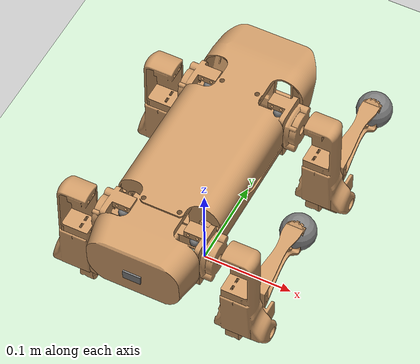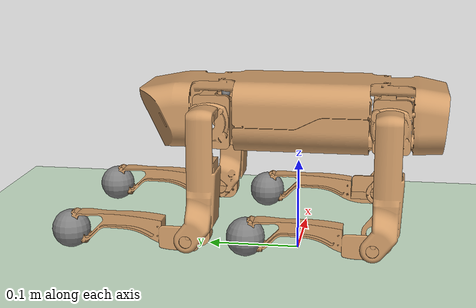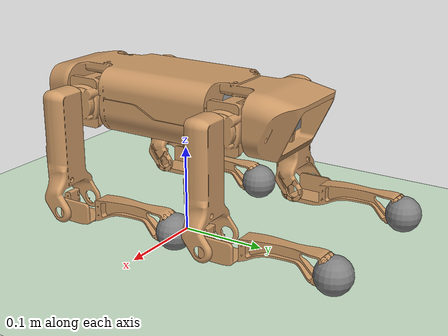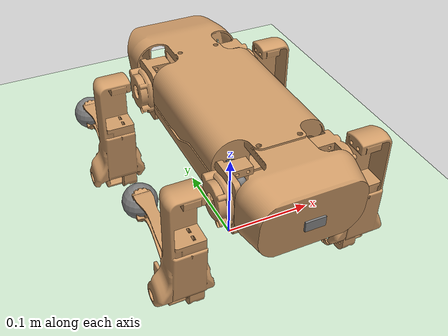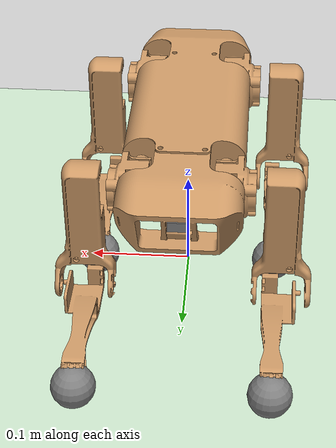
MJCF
<mujoco model="qrpfra">
    <include file="qrpfra_v3_IMU.xml"/>

    <default>
        <joint armature="1" damping="1" limited="true"/>
        <geom conaffinity="0" condim="3" density="1.0" friction="1 0.5 0.5" margin="0.01" rgba="0.8 0.6 0.4 1"/>
    </default>

    <asset>
        <texture builtin="gradient" height="100" rgb1="1 1 1" rgb2="0 0 0" type="skybox" width="100"/>
        <texture builtin="flat" height="1278" mark="cross" markrgb="1 1 1" name="texgeom" random="0.01" rgb1="0 0 0.4" rgb2="0.8 0.6 0.4" type="cube" width="127"/>
        <texture builtin="checker"  name="texplane" rgb1="0.02 0.02 0.12" rgb2="0.98 0.98 0.88" type="2d" width="100" height="100"/>
        <material name="MatPlane" reflectance="0.8" shininess="1" specular="1" texrepeat="60 60" texture="texplane"/>
    </asset>

    <worldbody>
        <light cutoff="100" diffuse="1 1 1" dir="-0 0 -1.3" directional="true" exponent="1" pos="0 0 1.3" specular=".1 .1 .1"/>
        <!--geom conaffinity="1" condim="3" friction="1 0.6 0.6" material="MatPlane" name="floor" pos="0 0 -0.05" rgba="0.8 0.9 0.8 1" size="50 50 0.05" type="box"/-->
        <geom conaffinity="1" condim="3" material="MatPlane" name="floor" pos="0 0 0" rgba="0.8 0.9 0.8 1" size="40 40 40" type="plane"/>
        <!--geom name="floor" size="0 0 0.05" type="plane" material="plane"/-->
    </worldbody>
</mujoco>

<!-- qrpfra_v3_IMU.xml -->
<mujoco model="qrpfra">
    <compiler angle="degree" coordinate="local" inertiafromgeom="true" convexhull="true"/>
    <option integrator="RK4" timestep="0.02" gravity="0 0 -9.81" density="1.24"/>

    <default>
        <joint armature="1" damping="1" limited="true"/>
        <geom conaffinity="1" condim="3" density="1.24" friction="1 0.5 0.5" margin="0.01" rgba="0.8 0.6 0.4 1"/>

        <default class="servo_motors">
            <position ctrllimited="true" ctrlrange="-1 1" kp="90" gear="0.95"/>
        </default>

        <default class="joint_def">
            <joint pos="0 0 0" range="-60 60" type="hinge" damping="12"/>
        </default>

        <default class="Left_foot_Site">
            <site pos="-0.016 0.13 -0.005" type="sphere" size="0.02"/>
        </default>

        <default class="Right_foot_Site">
            <site pos="0.016 0.13 -0.005" type="sphere" size="0.02"/>
        </default>

    </default>

    <asset>
        <mesh name="main_body" file="/Users/deniz/PycharmProjects/QRPfRA_Senior_Project/QRPfRA/QRPfRA_body_m.stl"/>
        <mesh name="Left_Hind_Limb" file="/Users/deniz/PycharmProjects/QRPfRA_Senior_Project/QRPfRA/QRPfRA_left_hindlimb_m.stl"/>
        <mesh name="Left_MidLimb" file="/Users/deniz/PycharmProjects/QRPfRA_Senior_Project/QRPfRA/QRPfRA_left_midlimb_m.stl"/>
        <mesh name="Left_Wrist" file="/Users/deniz/PycharmProjects/QRPfRA_Senior_Project/QRPfRA/QRPfRA_left_wrist_m.stl"/>
        <mesh name="Right_Hind_Limb" file="/Users/deniz/PycharmProjects/QRPfRA_Senior_Project/QRPfRA/QRPfRA_right_hindlimb_m.stl"/>
        <mesh name="Right_MidLimb" file="/Users/deniz/PycharmProjects/QRPfRA_Senior_Project/QRPfRA/QRPfRA_right_midlimb_m.stl"/>
        <mesh name="Right_Wrist" file="/Users/deniz/PycharmProjects/QRPfRA_Senior_Project/QRPfRA/QRPfRA_right_wrist_m.stl"/>
        <!--mesh name="map" file="/Users/deniz/Desktop/test_metric_depth/deneme2.stl"/-->
    </asset>

    <worldbody>
        <camera name="track" mode="trackcom" pos="0 -1 0.3" xyaxes="1 0 0 0 0 1"/>
        <!--geom type="mesh" mesh="map" size="0.1"/-->

        <body name="base_link" pos="0 0 0.15">
            <geom type="mesh" mesh="main_body" mass="2" friction="0.3" contype="1" conaffinity="1" density="2400" />
            <joint limited="false" margin="0.01" name="root" pos="0 0 0" type="free" stiffness="0" damping="0" frictionloss="0" armature="0"/>

            <site name="base_link_Site" pos="0 0 0" type="box" size="0.03 0.05 0.01"/>

            <site name="head_rangefinder" pos="0 0.14 0" type="box" size="0.01 0.005 0.001" euler="-90 0 0"/>
            <site name="rear_rangefinder" pos="0 -0.155 0" type="box" size="0.01 0.005 0.001" euler="90 0 0"/>

            <site name="FL_Leg_ref" pos="-0.04 0.0875 0.015"/>
            <site name="RL_Leg_ref" pos="-0.04 -0.0975 0.015"/>
            <site name="FR_Leg_ref" pos="0.04 0.0875 0.015"/>
            <site name="RR_Leg_ref" pos="0.04 -0.0975 0.015"/>I am trying to make a

            <body name="front_Left_Hind_Limb" pos="-0.04 0.065 0.013">
                <joint class="joint_def" axis="0 1 0" name="FL_hind_to_base" />
                <geom type="mesh" mesh="Left_Hind_Limb" mass="0.150" contype="1" conaffinity="1" density="2400"/>

                <body name="front_Left_MidLimb" pos="-0.025 0.023 -0.0105" euler="90 0 0">
                    <joint class="joint_def" axis="1 0 0" name="FL_mid_to_base"/>
                    <geom type="mesh" mesh="Left_MidLimb" mass="0.350" contype="1" conaffinity="1" density="2400"/>

                    <body name="front_Left_Wrist" pos="-0.005 -0.107 -0.013" euler="-90 0 0">
                        <joint class="joint_def" axis="1 0 0" name="FL_wrist_to_mid" />
                        <geom type="mesh" mesh="Left_Wrist" mass="0.350" contype="1" conaffinity="1" density="2400"/>

                        <site name="front_Left_Wrist_Site" class="Left_foot_Site"/>

                    </body>
                </body>
            </body>

            <body name="rear_Left_Hind_Limb" pos="-0.04 -0.12 0.013">
                <joint class="joint_def" axis="0 1 0" name="RL_hind_to_base" />
                <geom type="mesh" mesh="Left_Hind_Limb" mass="0.150" contype="1" conaffinity="1" density="2400"/>

                <body name="rear_Left_MidLimb" pos="-0.025 0.023 -0.0105" euler="90 0 0">
                    <joint class="joint_def" axis="1 0 0" name="RL_mid_to_base" />
                    <geom type="mesh" mesh="Left_MidLimb" mass="0.350" contype="1" conaffinity="1" density="2400"/>

                    <body name="rear_Left_Wrist" pos="-0.005 -0.107 -0.013" euler="-90 0 0">
                        <joint class="joint_def" axis="1 0 0" name="RL_wrist_to_mid" />
                        <geom type="mesh" mesh="Left_Wrist" mass="0.350" contype="1" conaffinity="1" density="2400"/>

                        <site name="rear_Left_Wrist_Site" class="Left_foot_Site"/>

                    </body>
                </body>
            </body>

            <body name="front_Right_Hind_Limb" pos="0.04 0.065 0.013">
                <joint class="joint_def" axis="0 1 0" name="FR_hind_to_base" />
                <geom type="mesh" mesh="Right_Hind_Limb" mass="0.150" contype="1" conaffinity="1" density="2400"/>

                <body name="front_Right_MidLimb" pos="0.025 0.023 -0.0105" euler="90 0 0">
                    <joint class="joint_def" axis="1 0 0" name="FR_mid_to_base"  />
                    <geom type="mesh" mesh="Right_MidLimb" mass="0.350" contype="1" conaffinity="1" density="2400"/>

                    <body name="front_Right_Wrist" pos="0.005 -0.107 -0.013" euler="-90 0 0">
                        <joint class="joint_def" axis="1 0 0" name="FR_wrist_to_mid" />
                        <geom type="mesh" mesh="Right_Wrist" mass="0.350" contype="1" conaffinity="1" density="2400"/>

                        <site name="front_Right_Wrist_Site" class="Right_foot_Site"/>

                    </body>
                </body>
            </body>

            <body name="rear_Right_Hind_Limb" pos="0.04 -0.12 0.013">
                <joint class="joint_def" axis="0 1 0" name="RR_hind_to_base" />
                <geom type="mesh" mesh="Right_Hind_Limb" mass="0.150" contype="1" conaffinity="1" density="2400"/>

                <body name="rear_Right_MidLimb" pos="0.025 0.023 -0.0105" euler="90 0 0">
                    <joint class="joint_def" axis="1 0 0" name="RR_mid_to_base"  />
                    <geom type="mesh" mesh="Right_MidLimb" mass="0.350" contype="1" conaffinity="1" density="2400"/>

                    <body name="rear_Right_Wrist" pos="0.005 -0.107 -0.013" euler="-90 0 0">
                        <joint class="joint_def" axis="1 0 0" name="RR_wrist_to_mid" />
                        <geom type="mesh" mesh="Right_Wrist" mass="0.350" contype="1" conaffinity="1" density="2400"/>

                        <site name="rear_Right_Wrist_Site" class="Right_foot_Site"/>

                    </body>
                </body>
            </body>

        </body>

    </worldbody>

    <contact>
        <exclude body1="base_link" body2="front_Left_Hind_Limb"/>
        <exclude body1="base_link" body2="rear_Left_Hind_Limb"/>
        <exclude body1="base_link" body2="front_Right_Hind_Limb"/>
        <exclude body1="base_link" body2="rear_Right_Hind_Limb"/>

        <exclude body1="base_link" body2="front_Left_MidLimb"/>
        <exclude body1="base_link" body2="rear_Left_MidLimb"/>
        <exclude body1="base_link" body2="front_Right_MidLimb"/>
        <exclude body1="base_link" body2="rear_Right_MidLimb"/>

        </contact>

    <actuator>
        <position class="servo_motors" joint="FL_hind_to_base" name="FL_Hind2Base"/>
        <position class="servo_motors" joint="FL_mid_to_base" name="FL_Mid2Hind"/>
        <position class="servo_motors" joint="FL_wrist_to_mid" name="FL_Wrist2Mid"/>

        <position class="servo_motors" joint="RL_hind_to_base" name="RL_Hind2Base"/>
        <position class="servo_motors" joint="RL_mid_to_base" name="RL_Mid2Hind"/>
        <position class="servo_motors" joint="RL_wrist_to_mid" name="RL_Wrist2Mid"/>

        <position class="servo_motors" joint="FR_hind_to_base" name="FR_Hind2Base"/>
        <position class="servo_motors" joint="FR_mid_to_base" name="FR_Mid2Hind"/>
        <position class="servo_motors" joint="FR_wrist_to_mid" name="FR_Wrist2Mid"/>

        <position class="servo_motors" joint="RR_hind_to_base" name="RR_Hind2Base"/>
        <position class="servo_motors" joint="RR_mid_to_base" name="RR_Mid2Hind"/>
        <position class="servo_motors" joint="RR_wrist_to_mid" name="RR_Wrist2Mid"/>
    </actuator>

    <sensor>
        <accelerometer name="accelerometer" site="base_link_Site"/>
        <gyro name="gyroscope" site="base_link_Site"/>
        <magnetometer name="magnetometer" site="base_link_Site"/>

        <!--framequat name="abs_orientation_of_the_base" reftype="body" refname="base_link" objtype="site" objname="base_link_Site"/-->

        <jointpos name="FL_Hind2Base_angle" joint="FL_hind_to_base"/>
        <jointpos name="FL_Mid2Hind_angle" joint="FL_mid_to_base"/>
        <jointpos name="FL_Wrist2Mid_angle" joint="FL_wrist_to_mid"/>

        <jointpos name="RL_Hind2Base_angle" joint="RL_hind_to_base"/>
        <jointpos name="RL_Mid2Hind_angle" joint="RL_mid_to_base"/>
        <jointpos name="RL_Wrist2Mid_angle" joint="RL_wrist_to_mid"/>

        <jointpos name="FR_Hind2Base_angle" joint="FR_hind_to_base"/>
        <jointpos name="FR_Mid2Hind_angle" joint="FR_mid_to_base"/>
        <jointpos name="FR_Wrist2Mid_angle" joint="FR_wrist_to_mid"/>

        <jointpos name="RR_Hind2Base_angle" joint="RR_hind_to_base"/>
        <jointpos name="RR_Mid2Hind_angle" joint="RR_mid_to_base"/>
        <jointpos name="RR_Wrist2Mid_angle" joint="RR_wrist_to_mid"/>

        <rangefinder name="head_rangefinder" site="head_rangefinder"/>
        <rangefinder name="rear_rangefinder" site="rear_rangefinder"/>

        <touch name="FL_foot_touch" site="front_Left_Wrist_Site" cutoff="1"/>
        <touch name="RL_foot_touch" site="rear_Left_Wrist_Site" cutoff="1"/>
        <touch name="FR_foot_touch" site="front_Right_Wrist_Site" cutoff="1"/>
        <touch name="RR_foot_touch" site="rear_Right_Wrist_Site" cutoff="1"/>

        <framequat name="abs_orientation_of_the_base" objtype="site" objname="base_link_Site"/>
    </sensor>

</mujoco>
